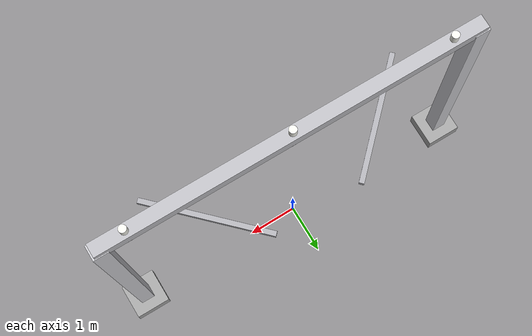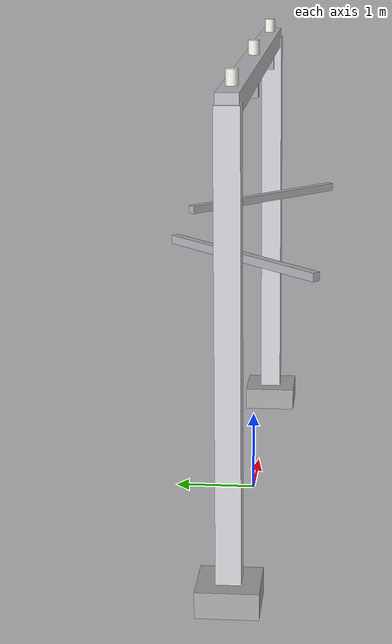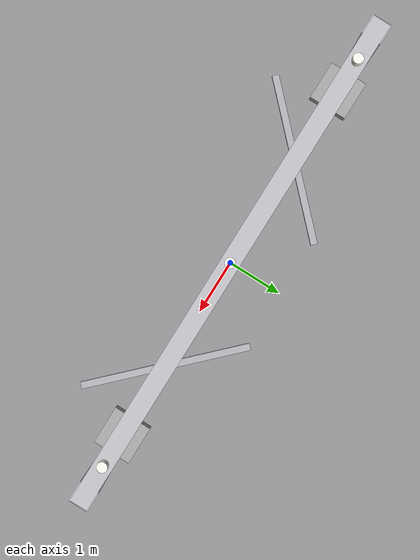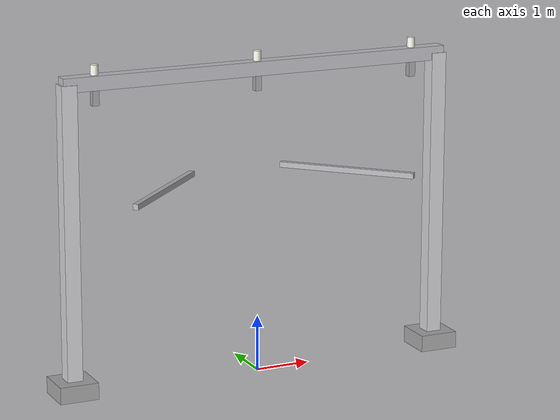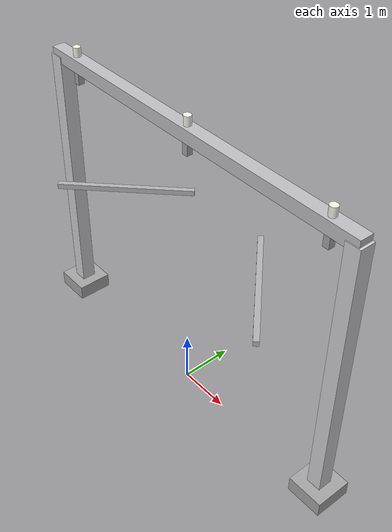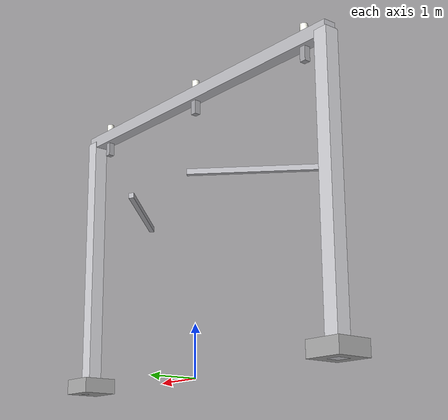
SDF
<?xml version="1.0"?>
<sdf version="1.10">
  <model name="gantry">
    <static>true</static>
    <link name="link">

      <!-- Concrete footings -->
      <visual name="foot_l"><pose>-3.5 0 0.15 0 0 0</pose><geometry><box><size>0.7 0.7 0.3</size></box></geometry>
        <material><ambient>0.55 0.55 0.55 1</ambient><diffuse>0.65 0.65 0.65 1</diffuse></material></visual>
      <visual name="foot_r"><pose>3.5 0 0.15 0 0 0</pose><geometry><box><size>0.7 0.7 0.3</size></box></geometry>
        <material><ambient>0.55 0.55 0.55 1</ambient><diffuse>0.65 0.65 0.65 1</diffuse></material></visual>

      <!-- Vertical columns -->
      <visual name="col_l"><pose>-3.5 0 2.75 0 0 0</pose><geometry><box><size>0.28 0.28 5.5</size></box></geometry>
        <material><ambient>0.72 0.72 0.74 1</ambient><diffuse>0.82 0.82 0.84 1</diffuse></material></visual>
      <visual name="col_r"><pose>3.5 0 2.75 0 0 0</pose><geometry><box><size>0.28 0.28 5.5</size></box></geometry>
        <material><ambient>0.72 0.72 0.74 1</ambient><diffuse>0.82 0.82 0.84 1</diffuse></material></visual>

      <!-- Cross bracing -->
      <visual name="brace_l"><pose>-1.75 0 3.5 0 0 0.785</pose><geometry><box><size>2.5 0.1 0.1</size></box></geometry>
        <material><ambient>0.60 0.60 0.62 1</ambient><diffuse>0.70 0.70 0.72 1</diffuse></material></visual>
      <visual name="brace_r"><pose>1.75 0 3.5 0 0 -0.785</pose><geometry><box><size>2.5 0.1 0.1</size></box></geometry>
        <material><ambient>0.60 0.60 0.62 1</ambient><diffuse>0.70 0.70 0.72 1</diffuse></material></visual>

      <!-- Top crossbeam -->
      <visual name="beam">
        <pose>0 0 5.5 0 0 0</pose>
        <geometry><box><size>7.2 0.25 0.25</size></box></geometry>
        <material><ambient>0.65 0.65 0.67 1</ambient><diffuse>0.75 0.75 0.77 1</diffuse></material>
      </visual>

      <!-- Phase attachment arms with insulators (A/B/C at x=-3,0,3) -->
      <visual name="arm_a"><pose>-3 0 5.35 0 0 0</pose><geometry><box><size>0.12 0.12 0.5</size></box></geometry>
        <material><ambient>0.55 0.55 0.57 1</ambient><diffuse>0.65 0.65 0.67 1</diffuse></material></visual>
      <visual name="ins_a"><pose>-3 0 5.65 0 0 0</pose><geometry><cylinder><radius>0.07</radius><length>0.30</length></cylinder></geometry>
        <material><ambient>0.92 0.92 0.88 1</ambient><diffuse>0.97 0.97 0.93 1</diffuse></material></visual>

      <visual name="arm_b"><pose>0 0 5.35 0 0 0</pose><geometry><box><size>0.12 0.12 0.5</size></box></geometry>
        <material><ambient>0.55 0.55 0.57 1</ambient><diffuse>0.65 0.65 0.67 1</diffuse></material></visual>
      <visual name="ins_b"><pose>0 0 5.65 0 0 0</pose><geometry><cylinder><radius>0.07</radius><length>0.30</length></cylinder></geometry>
        <material><ambient>0.92 0.92 0.88 1</ambient><diffuse>0.97 0.97 0.93 1</diffuse></material></visual>

      <visual name="arm_c"><pose>3 0 5.35 0 0 0</pose><geometry><box><size>0.12 0.12 0.5</size></box></geometry>
        <material><ambient>0.55 0.55 0.57 1</ambient><diffuse>0.65 0.65 0.67 1</diffuse></material></visual>
      <visual name="ins_c"><pose>3 0 5.65 0 0 0</pose><geometry><cylinder><radius>0.07</radius><length>0.30</length></cylinder></geometry>
        <material><ambient>0.92 0.92 0.88 1</ambient><diffuse>0.97 0.97 0.93 1</diffuse></material></visual>

      <collision name="col_l"><pose>-3.5 0 2.75 0 0 0</pose><geometry><box><size>0.35 0.35 5.5</size></box></geometry></collision>
      <collision name="col_r"><pose>3.5 0 2.75 0 0 0</pose><geometry><box><size>0.35 0.35 5.5</size></box></geometry></collision>
      <collision name="beam"><pose>0 0 5.5 0 0 0</pose><geometry><box><size>7.2 0.3 0.3</size></box></geometry></collision>
    </link>
  </model>
</sdf>
